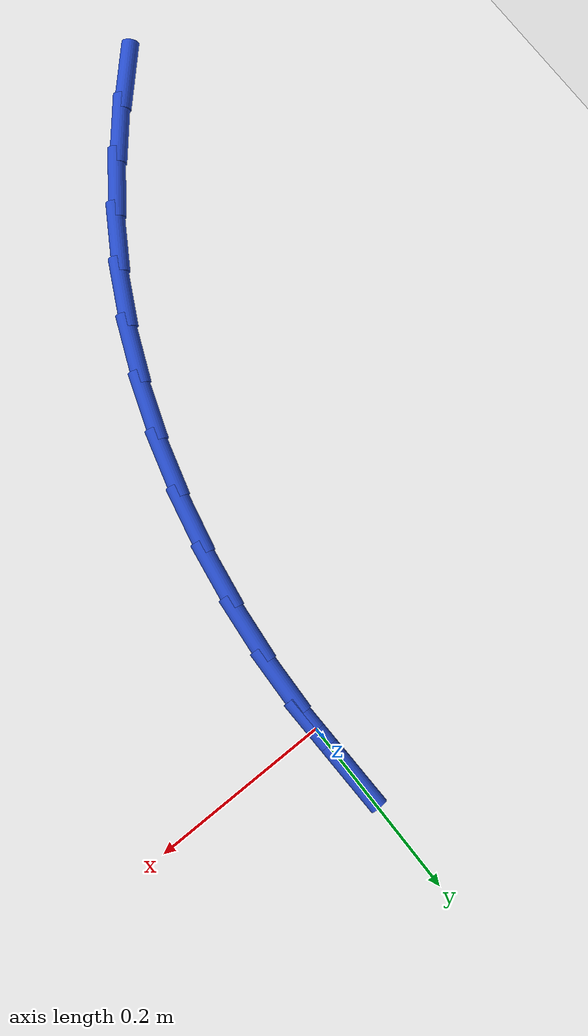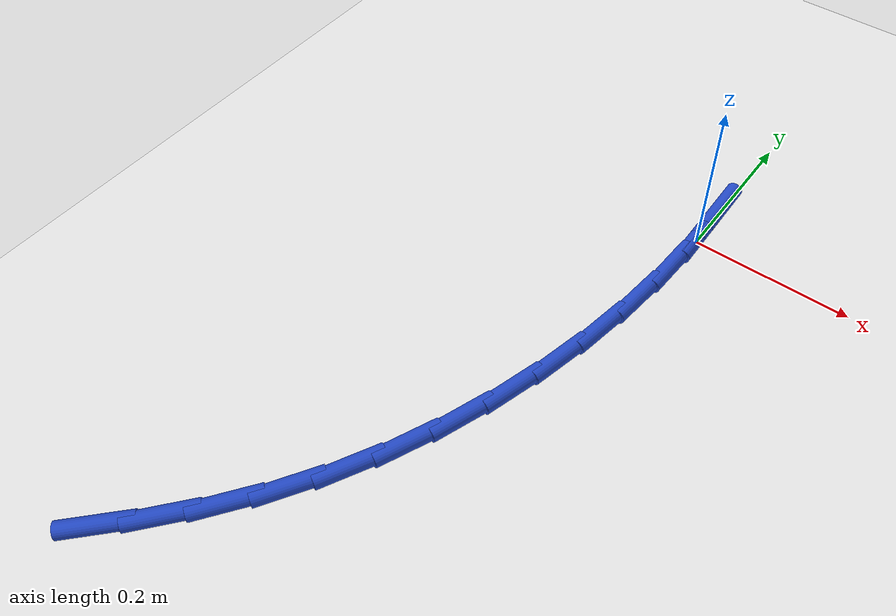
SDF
<sdf version="1.6">
 <world name="default">
  <model name="ground_plane">
   <static>1</static>
   <link name="link">
    <collision name="collision">
     <geometry><plane><normal>0 0 1</normal><size>100 100</size></plane></geometry>
     <surface><friction><ode><mu>100</mu><mu2>50</mu2></ode></friction></surface>
    </collision>
    <visual name="visual">
     <cast_shadows>0</cast_shadows>
     <geometry><plane><normal>0 0 1</normal><size>100 100</size></plane></geometry>
     <material>
      <script><uri>file://media/materials/scripts/gazebo.material</uri><name>Gazebo/WhiteGlow</name></script>
     </material>
    </visual>
   </link>
  </model>
  <model name="line">
   <link name="link_0">
    <pose>-1.0408340855860843e-17 -1.3877787807814457e-17 0.01 0 1.57 -1.551223172560872</pose>
    <collision name="collision">
     <geometry><cylinder><radius>0.01</radius><length>0.08</length></cylinder></geometry>
    </collision>
    <visual name="visual">
     <material>
      <script><name>Gazebo/Blue</name><uri>file://media/materials/scripts/gazebo.material</uri></script>
     </material>
     <geometry><cylinder><radius>0.01</radius><length>0.08</length></cylinder></geometry>
    </visual>
   </link>
   <link name="link_108">
    <pose>-0.2859026866661211 -0.6886819923874475 0.01 0 1.57 0.7988489422145786</pose>
    <collision name="collision">
     <geometry><cylinder><radius>0.01</radius><length>0.08</length></cylinder></geometry>
    </collision>
    <visual name="visual">
     <material>
      <script><name>Gazebo/Blue</name><uri>file://media/materials/scripts/gazebo.material</uri></script>
     </material>
     <geometry><cylinder><radius>0.01</radius><length>0.08</length></cylinder></geometry>
    </visual>
   </link>
   <link name="link_109">
    <pose>-0.24195918045696854 -0.6435401465418411 0.01 0 1.57 0.8590712012312945</pose>
    <collision name="collision">
     <geometry><cylinder><radius>0.01</radius><length>0.08</length></cylinder></geometry>
    </collision>
    <visual name="visual">
     <material>
      <script><name>Gazebo/Blue</name><uri>file://media/materials/scripts/gazebo.material</uri></script>
     </material>
     <geometry><cylinder><radius>0.01</radius><length>0.08</length></cylinder></geometry>
    </visual>
   </link>
   <link name="link_110">
    <pose>-0.20106240211176604 -0.5961253924846905 0.01 0 1.57 0.9281665552880115</pose>
    <collision name="collision">
     <geometry><cylinder><radius>0.01</radius><length>0.08</length></cylinder></geometry>
    </collision>
    <visual name="visual">
     <material>
      <script><name>Gazebo/Blue</name><uri>file://media/materials/scripts/gazebo.material</uri></script>
     </material>
     <geometry><cylinder><radius>0.01</radius><length>0.08</length></cylinder></geometry>
    </visual>
   </link>
   <link name="link_111">
    <pose>-0.1635354527784081 -0.5459985248418974 0.01 0 1.57 1.0050010957572155</pose>
    <collision name="collision">
     <geometry><cylinder><radius>0.01</radius><length>0.08</length></cylinder></geometry>
    </collision>
    <visual name="visual">
     <material>
      <script><name>Gazebo/Blue</name><uri>file://media/materials/scripts/gazebo.material</uri></script>
     </material>
     <geometry><cylinder><radius>0.01</radius><length>0.08</length></cylinder></geometry>
    </visual>
   </link>
   <link name="link_112">
    <pose>-0.12970129934851926 -0.49272077339260634 0.01 0 1.57 1.0847753420027406</pose>
    <collision name="collision">
     <geometry><cylinder><radius>0.01</radius><length>0.08</length></cylinder></geometry>
    </collision>
    <visual name="visual">
     <material>
      <script><name>Gazebo/Blue</name><uri>file://media/materials/scripts/gazebo.material</uri></script>
     </material>
     <geometry><cylinder><radius>0.01</radius><length>0.08</length></cylinder></geometry>
    </visual>
   </link>
   <link name="link_113">
    <pose>-0.09980033252847315 -0.43612101496942624 0.01 0 1.57 1.15872679570238</pose>
    <collision name="collision">
     <geometry><cylinder><radius>0.01</radius><length>0.08</length></cylinder></geometry>
    </collision>
    <visual name="visual">
     <material>
      <script><name>Gazebo/Blue</name><uri>file://media/materials/scripts/gazebo.material</uri></script>
     </material>
     <geometry><cylinder><radius>0.01</radius><length>0.08</length></cylinder></geometry>
    </visual>
   </link>
   <link name="link_114">
    <pose>-0.07384997695240905 -0.376750807067352 0.01 0 1.57 1.226811797802789</pose>
    <collision name="collision">
     <geometry><cylinder><radius>0.01</radius><length>0.08</length></cylinder></geometry>
    </collision>
    <visual name="visual">
     <material>
      <script><name>Gazebo/Blue</name><uri>file://media/materials/scripts/gazebo.material</uri></script>
     </material>
     <geometry><cylinder><radius>0.01</radius><length>0.08</length></cylinder></geometry>
    </visual>
   </link>
   <link name="link_115">
    <pose>-0.051830399055690105 -0.3152824689614163 0.01 0 1.57 1.2904564046463824</pose>
    <collision name="collision">
     <geometry><cylinder><radius>0.01</radius><length>0.08</length></cylinder></geometry>
    </collision>
    <visual name="visual">
     <material>
      <script><name>Gazebo/Blue</name><uri>file://media/materials/scripts/gazebo.material</uri></script>
     </material>
     <geometry><cylinder><radius>0.01</radius><length>0.08</length></cylinder></geometry>
    </visual>
   </link>
   <link name="link_116">
    <pose>-0.0337217652736804 -0.2523883199266541 0.01 0 1.57 1.3510256558073568</pose>
    <collision name="collision">
     <geometry><cylinder><radius>0.01</radius><length>0.08</length></cylinder></geometry>
    </collision>
    <visual name="visual">
     <material>
      <script><name>Gazebo/Blue</name><uri>file://media/materials/scripts/gazebo.material</uri></script>
     </material>
     <geometry><cylinder><radius>0.01</radius><length>0.08</length></cylinder></geometry>
    </visual>
   </link>
   <link name="link_117">
    <pose>-0.019504242041743076 -0.18874067923809817 0.01 0 1.57 1.4098525015311927</pose>
    <collision name="collision">
     <geometry><cylinder><radius>0.01</radius><length>0.08</length></cylinder></geometry>
    </collision>
    <visual name="visual">
     <material>
      <script><name>Gazebo/Blue</name><uri>file://media/materials/scripts/gazebo.material</uri></script>
     </material>
     <geometry><cylinder><radius>0.01</radius><length>0.08</length></cylinder></geometry>
    </visual>
   </link>
   <link name="link_118">
    <pose>-0.00915799579524159 -0.1250118661707817 0.01 0 1.57 1.4682895520081918</pose>
    <collision name="collision">
     <geometry><cylinder><radius>0.01</radius><length>0.08</length></cylinder></geometry>
    </collision>
    <visual name="visual">
     <material>
      <script><name>Gazebo/Blue</name><uri>file://media/materials/scripts/gazebo.material</uri></script>
     </material>
     <geometry><cylinder><radius>0.01</radius><length>0.08</length></cylinder></geometry>
    </visual>
   </link>
   <link name="link_119">
    <pose>-0.0026631929695393464 -0.061874199999737284 0.01 0 1.57 1.527780818423186</pose>
    <collision name="collision">
     <geometry><cylinder><radius>0.01</radius><length>0.08</length></cylinder></geometry>
    </collision>
    <visual name="visual">
     <material>
      <script><name>Gazebo/Blue</name><uri>file://media/materials/scripts/gazebo.material</uri></script>
     </material>
     <geometry><cylinder><radius>0.01</radius><length>0.08</length></cylinder></geometry>
    </visual>
   </link>
   <link name="link_120">
    <pose>0.0 1.3877787807814457e-17 0.01 0 1.57 -1.5516359474108044</pose>
    <collision name="collision">
     <geometry><cylinder><radius>0.01</radius><length>0.08</length></cylinder></geometry>
    </collision>
    <visual name="visual">
     <material>
      <script><name>Gazebo/Blue</name><uri>file://media/materials/scripts/gazebo.material</uri></script>
     </material>
     <geometry><cylinder><radius>0.01</radius><length>0.08</length></cylinder></geometry>
    </visual>
   </link>
   <link name="link_121">
    <pose>-0.0011485833219868936 0.05993841455339758 0.01 0 1.57 -1.5516359474108046</pose>
    <collision name="collision">
     <geometry><cylinder><radius>0.01</radius><length>0.08</length></cylinder></geometry>
    </collision>
    <visual name="visual">
     <material>
      <script><name>Gazebo/Blue</name><uri>file://media/materials/scripts/gazebo.material</uri></script>
     </material>
     <geometry><cylinder><radius>0.01</radius><length>0.08</length></cylinder></geometry>
    </visual>
   </link>
  </model>
 </world>
</sdf>
